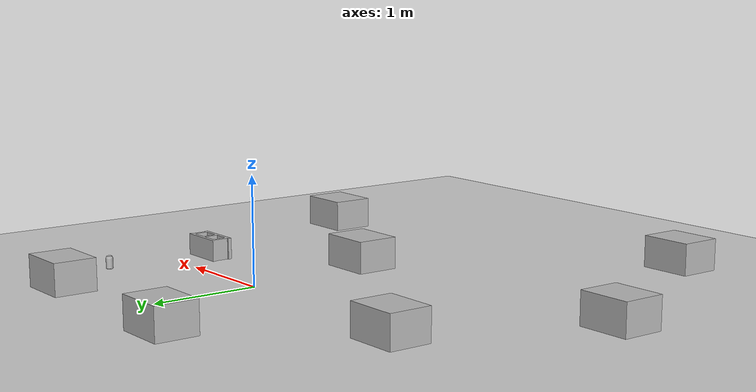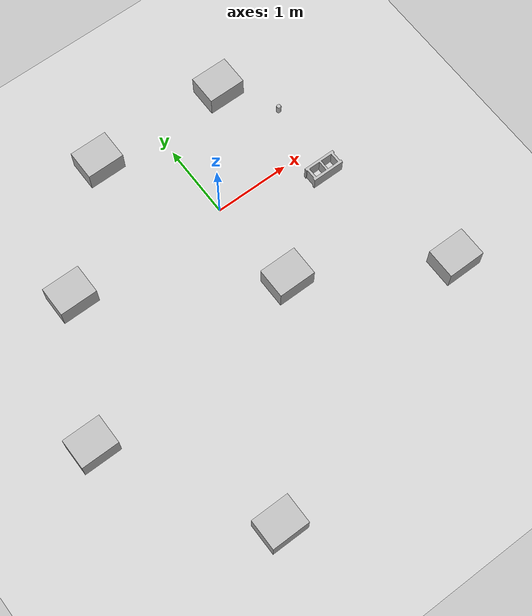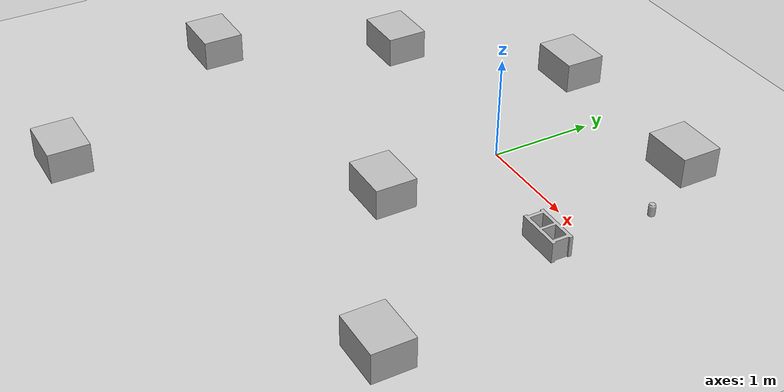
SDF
<sdf version="1.7">
 <world name="default">
  <light name="sun" type="directional">
   <pose>0 0 10 0 -0 0</pose>
   <diffuse>0.8 0.8 0.8 1</diffuse>
   <specular>0.2 0.2 0.2 1</specular>
   <attenuation>
    <range>1000</range>
    <constant>0.9</constant>
    <linear>0.01</linear>
    <quadratic>0.001</quadratic>
   </attenuation>
   <direction>-0.5 0.1 -0.9</direction>
   <spot><inner_angle>0</inner_angle><outer_angle>0</outer_angle><falloff>0</falloff></spot>
  </light>
  <model name="ground_plane">
   <static>1</static>
   <link name="link">
    <collision name="collision">
     <geometry><plane><normal>0 0 1</normal><size>100 100</size></plane></geometry>
     <surface>
      <contact><collide_bitmask>65535</collide_bitmask></contact>
      <friction><ode><mu>100</mu><mu2>50</mu2></ode></friction>
     </surface>
    </collision>
    <visual name="visual">
     <cast_shadows>0</cast_shadows>
     <geometry><plane><normal>0 0 1</normal><size>100 100</size></plane></geometry>
     <material>
      <script><uri>file://media/materials/scripts/gazebo.material</uri><name>Gazebo/Grey</name></script>
     </material>
    </visual>
   </link>
  </model>
  <gravity>0 0 -9.8</gravity>
  <magnetic_field>6e-06 2.3e-05 -4.2e-05</magnetic_field>
  <atmosphere type="adiabatic"/>
  <physics type="ode">
   <max_step_size>0.001</max_step_size>
   <real_time_factor>1</real_time_factor>
   <real_time_update_rate>1000</real_time_update_rate>
  </physics>
  <scene><ambient>0.4 0.4 0.4 1</ambient><background>0.7 0.7 0.7 1</background><shadows>1</shadows></scene>
  <audio><device>default</device></audio>
  <spherical_coordinates>
   <surface_model>EARTH_WGS84</surface_model>
   <latitude_deg>0</latitude_deg>
   <longitude_deg>0</longitude_deg>
   <elevation>0</elevation>
   <heading_deg>0</heading_deg>
  </spherical_coordinates>
  <model name="cardboard_box">
   <pose>0.975561 1.35683 0.15 0 -0 0</pose>
   <link name="link">
    <inertial>
     <mass>2</mass>
     <inertia>
      <ixx>0.0416667</ixx>
      <ixy>0</ixy>
      <ixz>0</ixz>
      <iyy>0.0566667</iyy>
      <iyz>0</iyz>
      <izz>0.0683333</izz>
     </inertia>
    </inertial>
    <collision name="collision">
     <geometry><box><size>0.5 0.4 0.3</size></box></geometry>
     <surface>
      <friction><ode><mu>1</mu><mu2>1</mu2></ode></friction>
      <contact><ode><kp>1e+07</kp><kd>1</kd><min_depth>0.001</min_depth><max_vel>0.1</max_vel></ode></contact>
     </surface>
    </collision>
    <visual name="visual">
     <pose>0 0 -0.15 0 -0 0</pose>
     <geometry>
      <mesh><uri>model://cardboard_box/meshes/cardboard_box.dae</uri><scale>1.25932 1.00745 0.755591</scale></mesh>
     </geometry>
    </visual>
   </link>
  </model>
  <model name="coke_can">
   <link name="link">
    <inertial>
     <pose>0 0 0.06 0 -0 0</pose>
     <mass>0.39</mass>
     <inertia>
      <ixx>0.00055575</ixx>
      <ixy>0</ixy>
      <ixz>0</ixz>
      <iyy>0.00055575</iyy>
      <iyz>0</iyz>
      <izz>0.0001755</izz>
     </inertia>
    </inertial>
    <collision name="collision">
     <pose>0.003937 0.004724 -0.18 0 -0 0</pose>
     <geometry><mesh><uri>model://coke_can/meshes/coke_can.dae</uri></mesh></geometry>
     <surface>
      <friction><ode><mu>1</mu><mu2>1</mu2></ode></friction>
      <contact><ode><kp>1e+07</kp><kd>1</kd><min_depth>0.001</min_depth><max_vel>0.1</max_vel></ode></contact>
     </surface>
    </collision>
    <visual name="visual">
     <pose>0.003937 0.004724 -0.18 0 -0 0</pose>
     <geometry><mesh><uri>model://coke_can/meshes/coke_can.dae</uri></mesh></geometry>
    </visual>
   </link>
   <pose>1.42367 0.674235 0 0 -0 0</pose>
  </model>
  <model name="cinder_block">
   <link name="link">
    <inertial>
     <pose>0 0 0.1016 0 -0 0</pose>
     <mass>5</mass>
     <inertia>
      <ixx>0.028705</ixx>
      <ixy>0</ixy>
      <iyy>0.073708</iyy>
      <ixz>0</ixz>
      <iyz>0</iyz>
      <izz>0.06908</izz>
     </inertia>
    </inertial>
    <visual name="visual">
     <geometry><mesh><uri>model://cinder_block/meshes/cinder_block.dae</uri></mesh></geometry>
    </visual>
    <collision name="left">
     <pose>0 -0.08465 0.1016 0 -0 0</pose>
     <geometry><box><size>0.43495 0.0339 0.2032</size></box></geometry>
     <surface>
      <contact><ode><max_vel>0.1</max_vel><min_depth>0.001</min_depth></ode></contact>
      <friction><ode><mu>1</mu><mu2>1</mu2></ode></friction>
     </surface>
    </collision>
    <collision name="right">
     <pose>0 0.08465 0.1016 0 -0 0</pose>
     <geometry><box><size>0.43495 0.0339 0.2032</size></box></geometry>
     <surface>
      <contact><ode><max_vel>0.1</max_vel><min_depth>0.001</min_depth></ode></contact>
      <friction><ode><mu>1</mu><mu2>1</mu2></ode></friction>
     </surface>
    </collision>
    <collision name="front">
     <pose>0.18625 0 0.1016 0 -0 0</pose>
     <geometry><box><size>0.0339 0.1354 0.203</size></box></geometry>
     <surface>
      <contact><ode><max_vel>0.1</max_vel><min_depth>0.001</min_depth></ode></contact>
      <friction><ode><mu>1</mu><mu2>1</mu2></ode></friction>
     </surface>
    </collision>
    <collision name="middle">
     <pose>0 0 0.1016 0 -0 0</pose>
     <geometry><box><size>0.0339 0.1354 0.203</size></box></geometry>
     <surface>
      <contact><ode><max_vel>0.1</max_vel><min_depth>0.001</min_depth></ode></contact>
      <friction><ode><mu>1</mu><mu2>1</mu2></ode></friction>
     </surface>
    </collision>
    <collision name="back">
     <pose>-0.18625 0 0.1016 0 -0 0</pose>
     <geometry><box><size>0.0339 0.1354 0.203</size></box></geometry>
     <surface>
      <contact><ode><max_vel>0.1</max_vel><min_depth>0.001</min_depth></ode></contact>
      <friction><ode><mu>1</mu><mu2>1</mu2></ode></friction>
     </surface>
    </collision>
   </link>
   <pose>1.33053 -0.358907 0 0 -0 0</pose>
  </model>
  <model name="cardboard_box_0">
   <pose>0.085662 -1.24824 0.15 0 -0 0</pose>
   <link name="link">
    <inertial>
     <mass>2</mass>
     <inertia>
      <ixx>0.0416667</ixx>
      <ixy>0</ixy>
      <ixz>0</ixz>
      <iyy>0.0566667</iyy>
      <iyz>0</iyz>
      <izz>0.0683333</izz>
     </inertia>
    </inertial>
    <collision name="collision">
     <geometry><box><size>0.5 0.4 0.3</size></box></geometry>
     <surface>
      <friction><ode><mu>1</mu><mu2>1</mu2></ode></friction>
      <contact><ode><kp>1e+07</kp><kd>1</kd><min_depth>0.001</min_depth><max_vel>0.1</max_vel></ode></contact>
     </surface>
    </collision>
    <visual name="visual">
     <pose>0 0 -0.15 0 -0 0</pose>
     <geometry>
      <mesh><uri>model://cardboard_box/meshes/cardboard_box.dae</uri><scale>1.25932 1.00745 0.755591</scale></mesh>
     </geometry>
    </visual>
   </link>
  </model>
  <model name="cardboard_box_1">
   <pose>-0.833853 1.39821 0.15 0 -0 0</pose>
   <link name="link">
    <inertial>
     <mass>2</mass>
     <inertia>
      <ixx>0.0416667</ixx>
      <ixy>0</ixy>
      <ixz>0</ixz>
      <iyy>0.0566667</iyy>
      <iyz>0</iyz>
      <izz>0.0683333</izz>
     </inertia>
    </inertial>
    <collision name="collision">
     <geometry><box><size>0.5 0.4 0.3</size></box></geometry>
     <surface>
      <friction><ode><mu>1</mu><mu2>1</mu2></ode></friction>
      <contact><ode><kp>1e+07</kp><kd>1</kd><min_depth>0.001</min_depth><max_vel>0.1</max_vel></ode></contact>
     </surface>
    </collision>
    <visual name="visual">
     <pose>0 0 -0.15 0 -0 0</pose>
     <geometry>
      <mesh><uri>model://cardboard_box/meshes/cardboard_box.dae</uri><scale>1.25932 1.00745 0.755591</scale></mesh>
     </geometry>
    </visual>
   </link>
  </model>
  <model name="cardboard_box_2">
   <pose>-2.92748 -1.55327 0.15 0 -0 0</pose>
   <link name="link">
    <inertial>
     <mass>2</mass>
     <inertia>
      <ixx>0.0416667</ixx>
      <ixy>0</ixy>
      <ixz>0</ixz>
      <iyy>0.0566667</iyy>
      <iyz>0</iyz>
      <izz>0.0683333</izz>
     </inertia>
    </inertial>
    <collision name="collision">
     <geometry><box><size>0.5 0.4 0.3</size></box></geometry>
     <surface>
      <friction><ode><mu>1</mu><mu2>1</mu2></ode></friction>
      <contact><ode><kp>1e+07</kp><kd>1</kd><min_depth>0.001</min_depth><max_vel>0.1</max_vel></ode></contact>
     </surface>
    </collision>
    <visual name="visual">
     <pose>0 0 -0.15 0 -0 0</pose>
     <geometry>
      <mesh><uri>model://cardboard_box/meshes/cardboard_box.dae</uri><scale>1.25932 1.00745 0.755591</scale></mesh>
     </geometry>
    </visual>
   </link>
  </model>
  <model name="cardboard_box_3">
   <pose>-2.10064 0.108655 0.15 0 -0 0</pose>
   <link name="link">
    <inertial>
     <mass>2</mass>
     <inertia>
      <ixx>0.0416667</ixx>
      <ixy>0</ixy>
      <ixz>0</ixz>
      <iyy>0.0566667</iyy>
      <iyz>0</iyz>
      <izz>0.0683333</izz>
     </inertia>
    </inertial>
    <collision name="collision">
     <geometry><box><size>0.5 0.4 0.3</size></box></geometry>
     <surface>
      <friction><ode><mu>1</mu><mu2>1</mu2></ode></friction>
      <contact><ode><kp>1e+07</kp><kd>1</kd><min_depth>0.001</min_depth><max_vel>0.1</max_vel></ode></contact>
     </surface>
    </collision>
    <visual name="visual">
     <pose>0 0 -0.15 0 -0 0</pose>
     <geometry>
      <mesh><uri>model://cardboard_box/meshes/cardboard_box.dae</uri><scale>1.25932 1.00745 0.755591</scale></mesh>
     </geometry>
    </visual>
   </link>
  </model>
  <model name="cardboard_box_4">
   <pose>1.83993 -2.25837 0.15 0 -0 0</pose>
   <link name="link">
    <inertial>
     <mass>2</mass>
     <inertia>
      <ixx>0.0416667</ixx>
      <ixy>0</ixy>
      <ixz>0</ixz>
      <iyy>0.0566667</iyy>
      <iyz>0</iyz>
      <izz>0.0683333</izz>
     </inertia>
    </inertial>
    <collision name="collision">
     <geometry><box><size>0.5 0.4 0.3</size></box></geometry>
     <surface>
      <friction><ode><mu>1</mu><mu2>1</mu2></ode></friction>
      <contact><ode><kp>1e+07</kp><kd>1</kd><min_depth>0.001</min_depth><max_vel>0.1</max_vel></ode></contact>
     </surface>
    </collision>
    <visual name="visual">
     <pose>0 0 -0.15 0 -0 0</pose>
     <geometry>
      <mesh><uri>model://cardboard_box/meshes/cardboard_box.dae</uri><scale>1.25932 1.00745 0.755591</scale></mesh>
     </geometry>
    </visual>
   </link>
  </model>
  <model name="cardboard_box_5">
   <pose>-1.77394 -3.54796 0.15 0 -0 0</pose>
   <link name="link">
    <inertial>
     <mass>2</mass>
     <inertia>
      <ixx>0.0416667</ixx>
      <ixy>0</ixy>
      <ixz>0</ixz>
      <iyy>0.0566667</iyy>
      <iyz>0</iyz>
      <izz>0.0683333</izz>
     </inertia>
    </inertial>
    <collision name="collision">
     <geometry><box><size>0.5 0.4 0.3</size></box></geometry>
     <surface>
      <friction><ode><mu>1</mu><mu2>1</mu2></ode></friction>
      <contact><ode><kp>1e+07</kp><kd>1</kd><min_depth>0.001</min_depth><max_vel>0.1</max_vel></ode></contact>
     </surface>
    </collision>
    <visual name="visual">
     <pose>0 0 -0.15 0 -0 0</pose>
     <geometry>
      <mesh><uri>model://cardboard_box/meshes/cardboard_box.dae</uri><scale>1.25932 1.00745 0.755591</scale></mesh>
     </geometry>
    </visual>
   </link>
  </model>
 </world>
</sdf>
